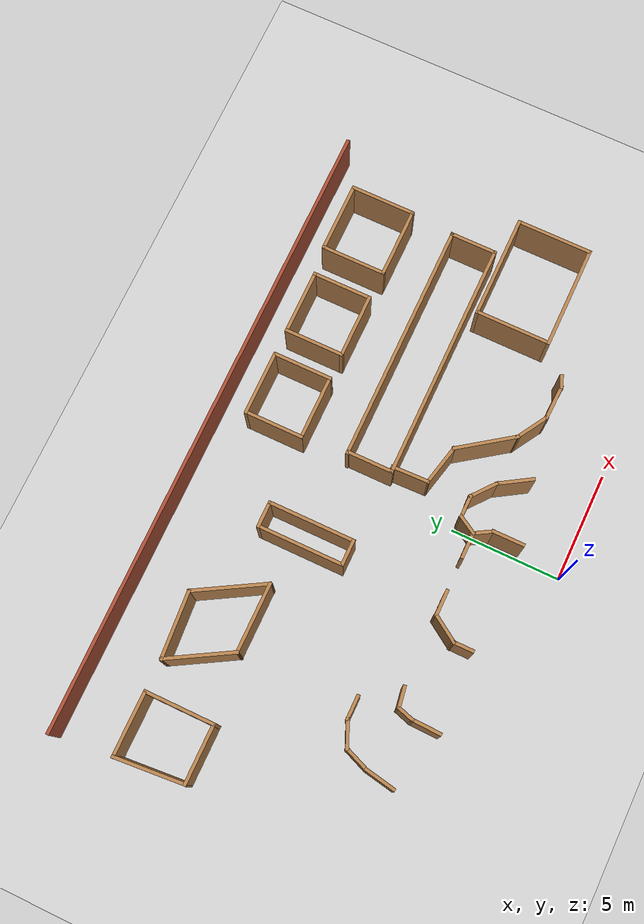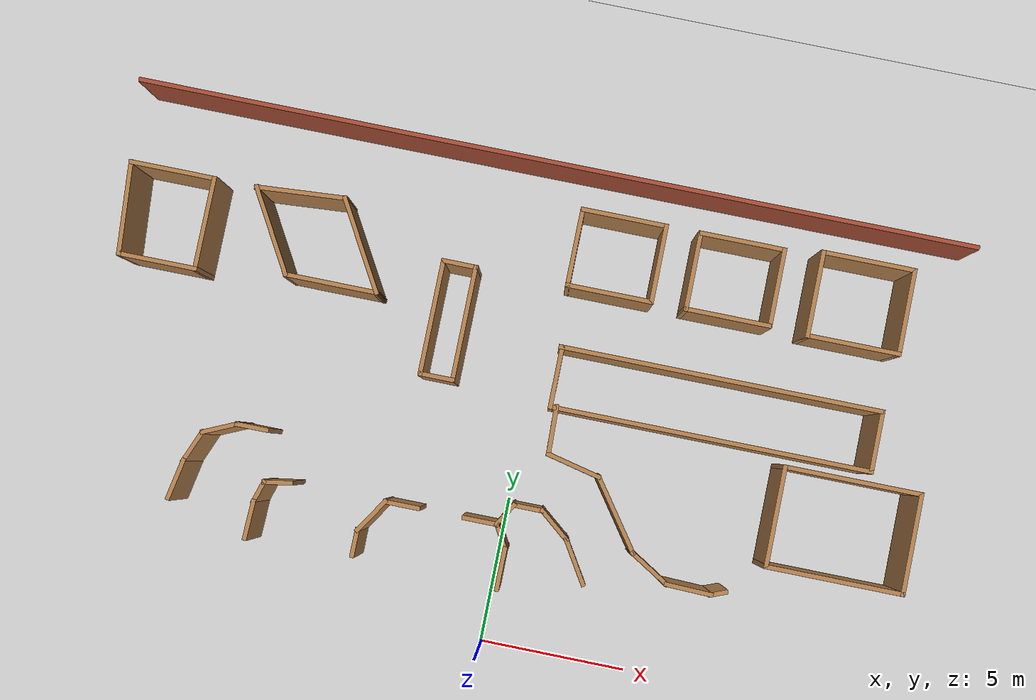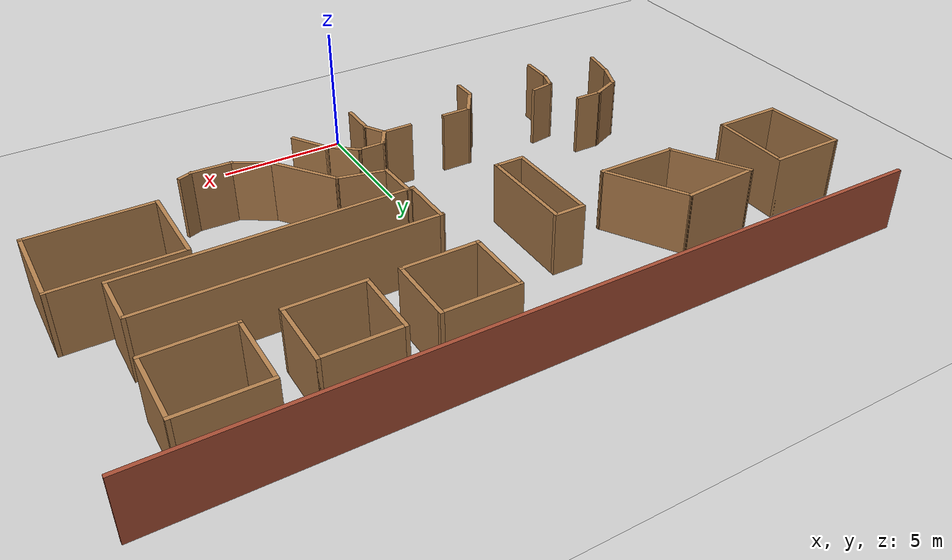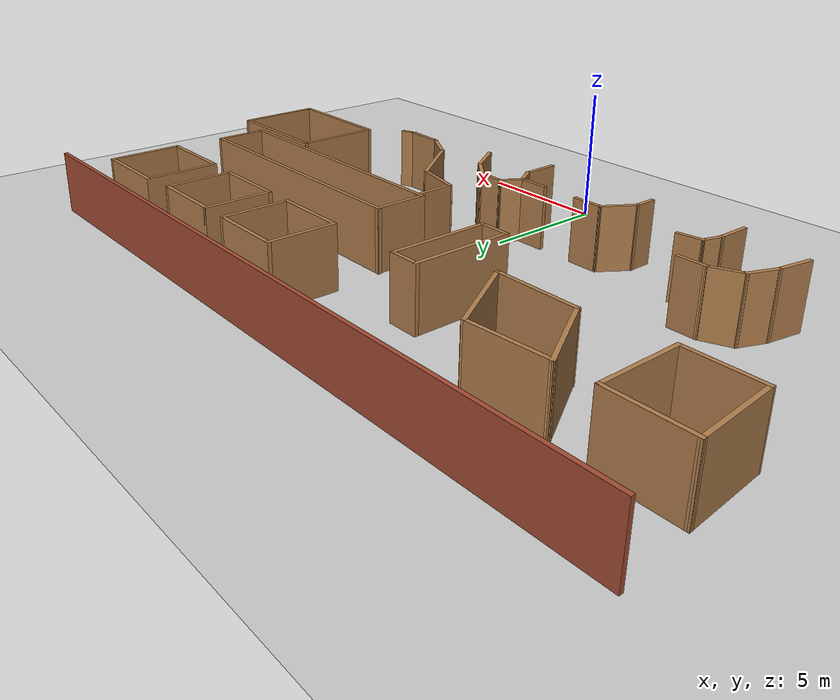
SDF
<sdf version="1.6">
 <world name="default">
  <model name="ground_plane">
   <static>1</static>
   <link name="link">
    <collision name="collision">
     <geometry><plane><normal>0 0 1</normal><size>100 100</size></plane></geometry>
     <surface><friction><ode><mu>100</mu><mu2>50</mu2></ode></friction></surface>
    </collision>
    <visual name="visual">
     <cast_shadows>0</cast_shadows>
     <geometry><plane><normal>0 0 1</normal><size>100 100</size></plane></geometry>
     <material>
      <ambient>1.0 1.0 1.0 1.0</ambient>
      <diffuse>0.8 0.8 0.8 1.0</diffuse>
      <specular>0.01 0.01 0.01 1.000000</specular>
     </material>
    </visual>
   </link>
  </model>
  <model name="Untitled">
   <pose>-0.599498 1.70429 0 0 -0 0</pose>
   <link name="Wall_101">
    <collision name="Wall_101_Collision">
     <geometry><box><size>3 0.15 2.5</size></box></geometry>
     <pose>0 0 1.25 0 -0 0</pose>
    </collision>
    <visual name="Wall_101_Visual">
     <pose>0 0 1.25 0 -0 0</pose>
     <geometry><box><size>3 0.15 2.5</size></box></geometry>
     <material>
      <script><uri>file://media/materials/scripts/gazebo.material</uri><name>Gazebo/Wood</name></script>
      <ambient>1 1 1 1</ambient>
     </material>
     <meta><layer>0</layer></meta>
    </visual>
    <pose>2.53338 13.315 0 0 -0 3.14159</pose>
   </link>
   <link name="Wall_102">
    <collision name="Wall_102_Collision">
     <geometry><box><size>2.75 0.15 2.5</size></box></geometry>
     <pose>0 0 1.25 0 -0 0</pose>
    </collision>
    <visual name="Wall_102_Visual">
     <pose>0 0 1.25 0 -0 0</pose>
     <geometry><box><size>2.75 0.15 2.5</size></box></geometry>
     <material>
      <script><uri>file://media/materials/scripts/gazebo.material</uri><name>Gazebo/Wood</name></script>
      <ambient>1 1 1 1</ambient>
     </material>
     <meta><layer>0</layer></meta>
    </visual>
    <pose>1.10838 12.015 0 0 0 -1.5708</pose>
   </link>
   <link name="Wall_103">
    <collision name="Wall_103_Collision">
     <geometry><box><size>3 0.15 2.5</size></box></geometry>
     <pose>0 0 1.25 0 -0 0</pose>
    </collision>
    <visual name="Wall_103_Visual">
     <pose>0 0 1.25 0 -0 0</pose>
     <geometry><box><size>3 0.15 2.5</size></box></geometry>
     <material>
      <script><uri>file://media/materials/scripts/gazebo.material</uri><name>Gazebo/Wood</name></script>
      <ambient>1 1 1 1</ambient>
     </material>
     <meta><layer>0</layer></meta>
    </visual>
    <pose>2.53338 10.715 0 0 -0 0</pose>
   </link>
   <link name="Wall_104">
    <collision name="Wall_104_Collision">
     <geometry><box><size>2.75 0.15 2.5</size></box></geometry>
     <pose>0 0 1.25 0 -0 0</pose>
    </collision>
    <visual name="Wall_104_Visual">
     <pose>0 0 1.25 0 -0 0</pose>
     <geometry><box><size>2.75 0.15 2.5</size></box></geometry>
     <material>
      <script><uri>file://media/materials/scripts/gazebo.material</uri><name>Gazebo/Wood</name></script>
      <ambient>1 1 1 1</ambient>
     </material>
     <meta><layer>0</layer></meta>
    </visual>
    <pose>3.95838 12.015 0 0 -0 1.5708</pose>
   </link>
   <link name="Wall_106">
    <collision name="Wall_106_Collision">
     <geometry><box><size>2.17719 0.15 2.5</size></box></geometry>
     <pose>0 0 1.25 0 -0 0</pose>
    </collision>
    <visual name="Wall_106_Visual">
     <pose>0 0 1.25 0 -0 0</pose>
     <geometry><box><size>2.17719 0.15 2.5</size></box></geometry>
     <material>
      <script><uri>file://media/materials/scripts/gazebo.material</uri><name>Gazebo/Wood</name></script>
      <ambient>1 1 1 1</ambient>
     </material>
     <meta><layer>0</layer></meta>
    </visual>
    <pose>1.35118 7.63612 0 0 0 -1.5708</pose>
   </link>
   <link name="Wall_107">
    <collision name="Wall_107_Collision">
     <geometry><box><size>11 0.15 2.5</size></box></geometry>
     <pose>0 0 1.25 0 -0 0</pose>
    </collision>
    <visual name="Wall_107_Visual">
     <pose>0 0 1.25 0 -0 0</pose>
     <geometry><box><size>11 0.15 2.5</size></box></geometry>
     <material>
      <script><uri>file://media/materials/scripts/gazebo.material</uri><name>Gazebo/Wood</name></script>
      <ambient>1 1 1 1</ambient>
     </material>
     <meta><layer>0</layer></meta>
    </visual>
    <pose>6.77618 6.62279 0 0 -0 0</pose>
   </link>
   <link name="Wall_108">
    <collision name="Wall_108_Collision">
     <geometry><box><size>2.17719 0.15 2.5</size></box></geometry>
     <pose>0 0 1.25 0 -0 0</pose>
    </collision>
    <visual name="Wall_108_Visual">
     <pose>0 0 1.25 0 -0 0</pose>
     <geometry><box><size>2.17719 0.15 2.5</size></box></geometry>
     <material>
      <script><uri>file://media/materials/scripts/gazebo.material</uri><name>Gazebo/Wood</name></script>
      <ambient>1 1 1 1</ambient>
     </material>
     <meta><layer>0</layer></meta>
    </visual>
    <pose>12.2012 7.63612 0 0 -0 1.5708</pose>
   </link>
   <link name="Wall_109">
    <collision name="Wall_109_Collision">
     <geometry><box><size>11 0.15 2.5</size></box></geometry>
     <pose>0 0 1.25 0 -0 0</pose>
    </collision>
    <visual name="Wall_109_Visual">
     <pose>0 0 1.25 0 -0 0</pose>
     <geometry><box><size>11 0.15 2.5</size></box></geometry>
     <material>
      <script><uri>file://media/materials/scripts/gazebo.material</uri><name>Gazebo/Wood</name></script>
      <ambient>1 1 1 1</ambient>
     </material>
     <meta><layer>0</layer></meta>
    </visual>
    <pose>6.73044 8.64946 0 0 -0 3.14159</pose>
   </link>
   <link name="Wall_111">
    <collision name="Wall_111_Collision">
     <geometry><box><size>3 0.15 2.5</size></box></geometry>
     <pose>0 0 1.25 0 -0 0</pose>
    </collision>
    <visual name="Wall_111_Visual">
     <pose>0 0 1.25 0 -0 0</pose>
     <geometry><box><size>3 0.15 2.5</size></box></geometry>
     <material>
      <script><uri>file://media/materials/scripts/gazebo.material</uri><name>Gazebo/Wood</name></script>
      <ambient>1 1 1 1</ambient>
     </material>
     <meta><layer>0</layer></meta>
    </visual>
    <pose>-12.6189 11.8842 0 0 -0 0</pose>
   </link>
   <link name="Wall_112">
    <collision name="Wall_112_Collision">
     <geometry><box><size>3.25 0.15 2.5</size></box></geometry>
     <pose>0 0 1.25 0 -0 0</pose>
    </collision>
    <visual name="Wall_112_Visual">
     <pose>0 0 1.25 0 -0 0</pose>
     <geometry><box><size>3.25 0.15 2.5</size></box></geometry>
     <material>
      <script><uri>file://media/materials/scripts/gazebo.material</uri><name>Gazebo/Wood</name></script>
      <ambient>1 1 1 1</ambient>
     </material>
     <meta><layer>0</layer></meta>
    </visual>
    <pose>-11.1939 10.3342 0 0 0 -1.5708</pose>
   </link>
   <link name="Wall_113">
    <collision name="Wall_113_Collision">
     <geometry><box><size>2.75 0.15 2.5</size></box></geometry>
     <pose>0 0 1.25 0 -0 0</pose>
    </collision>
    <visual name="Wall_113_Visual">
     <pose>0 0 1.25 0 -0 0</pose>
     <geometry><box><size>2.75 0.15 2.5</size></box></geometry>
     <material>
      <script><uri>file://media/materials/scripts/gazebo.material</uri><name>Gazebo/Wood</name></script>
      <ambient>1 1 1 1</ambient>
     </material>
     <meta><layer>0</layer></meta>
    </visual>
    <pose>-12.4939 8.78422 0 0 -0 3.14159</pose>
   </link>
   <link name="Wall_114">
    <collision name="Wall_114_Collision">
     <geometry><box><size>3.26006 0.15 2.5</size></box></geometry>
     <pose>0 0 1.25 0 -0 0</pose>
    </collision>
    <visual name="Wall_114_Visual">
     <pose>0 0 1.25 0 -0 0</pose>
     <geometry><box><size>3.26006 0.15 2.5</size></box></geometry>
     <material>
      <script><uri>file://media/materials/scripts/gazebo.material</uri><name>Gazebo/Wood</name></script>
      <ambient>1 1 1 1</ambient>
     </material>
     <meta><layer>0</layer></meta>
    </visual>
    <pose>-13.9189 10.3342 0 0 -0 1.65127</pose>
   </link>
   <link name="Wall_116">
    <collision name="Wall_116_Collision">
     <geometry><box><size>3.25 0.15 2.5</size></box></geometry>
     <pose>0 0 1.25 0 -0 0</pose>
    </collision>
    <visual name="Wall_116_Visual">
     <pose>0 0 1.25 0 -0 0</pose>
     <geometry><box><size>3.25 0.15 2.5</size></box></geometry>
     <material>
      <script><uri>file://media/materials/scripts/gazebo.material</uri><name>Gazebo/Wood</name></script>
      <ambient>1 1 1 1</ambient>
     </material>
     <meta><layer>0</layer></meta>
    </visual>
    <pose>-8.96931 10.5419 0 0 0 -1.0472</pose>
   </link>
   <link name="Wall_117">
    <collision name="Wall_117_Collision">
     <geometry><box><size>3.25 0.15 2.5</size></box></geometry>
     <pose>0 0 1.25 0 -0 0</pose>
    </collision>
    <visual name="Wall_117_Visual">
     <pose>0 0 1.25 0 -0 0</pose>
     <geometry><box><size>3.25 0.15 2.5</size></box></geometry>
     <material>
      <script><uri>file://media/materials/scripts/gazebo.material</uri><name>Gazebo/Wood</name></script>
      <ambient>1 1 1 1</ambient>
     </material>
     <meta><layer>0</layer></meta>
    </visual>
    <pose>-6.64431 9.19954 0 0 -0 0</pose>
   </link>
   <link name="Wall_118">
    <collision name="Wall_118_Collision">
     <geometry><box><size>3.5 0.15 2.5</size></box></geometry>
     <pose>0 0 1.25 0 -0 0</pose>
    </collision>
    <visual name="Wall_118_Visual">
     <pose>0 0 1.25 0 -0 0</pose>
     <geometry><box><size>3.5 0.15 2.5</size></box></geometry>
     <material>
      <script><uri>file://media/materials/scripts/gazebo.material</uri><name>Gazebo/Wood</name></script>
      <ambient>1 1 1 1</ambient>
     </material>
     <meta><layer>0</layer></meta>
    </visual>
    <pose>-5.93181 10.6501 0 0 -0 2.0944</pose>
   </link>
   <link name="Wall_119">
    <collision name="Wall_119_Collision">
     <geometry><box><size>3.13287 0.15 2.5</size></box></geometry>
     <pose>0 0 1.25 0 -0 0</pose>
    </collision>
    <visual name="Wall_119_Visual">
     <pose>0 0 1.25 0 -0 0</pose>
     <geometry><box><size>3.13287 0.15 2.5</size></box></geometry>
     <material>
      <script><uri>file://media/materials/scripts/gazebo.material</uri><name>Gazebo/Wood</name></script>
      <ambient>1 1 1 1</ambient>
     </material>
     <meta><layer>0</layer></meta>
    </visual>
    <pose>-8.25681 11.9925 0 0 0 -3.06894</pose>
   </link>
   <link name="Wall_121">
    <collision name="Wall_121_Collision">
     <geometry><box><size>1.00408 0.15 2.5</size></box></geometry>
     <pose>0 0 1.25 0 -0 0</pose>
    </collision>
    <visual name="Wall_121_Visual">
     <pose>0 0 1.25 0 -0 0</pose>
     <geometry><box><size>1.00408 0.15 2.5</size></box></geometry>
     <material>
      <script><uri>file://media/materials/scripts/gazebo.material</uri><name>Gazebo/Wood</name></script>
      <ambient>1 1 1 1</ambient>
     </material>
     <meta><layer>0</layer></meta>
    </visual>
    <pose>0.604472 2.8259 0 0 -0 1.03717</pose>
   </link>
   <link name="Wall_122">
    <collision name="Wall_122_Collision">
     <geometry><box><size>1.11054 0.15 2.5</size></box></geometry>
     <pose>0 0 1.25 0 -0 0</pose>
    </collision>
    <visual name="Wall_122_Visual">
     <pose>0 0 1.25 0 -0 0</pose>
     <geometry><box><size>1.11054 0.15 2.5</size></box></geometry>
     <material>
      <script><uri>file://media/materials/scripts/gazebo.material</uri><name>Gazebo/Wood</name></script>
      <ambient>1 1 1 1</ambient>
     </material>
     <meta><layer>0</layer></meta>
    </visual>
    <pose>1.30196 3.19357 0 0 -0 0</pose>
   </link>
   <link name="Wall_123">
    <collision name="Wall_123_Collision">
     <geometry><box><size>1.38583 0.15 2.5</size></box></geometry>
     <pose>0 0 1.25 0 -0 0</pose>
    </collision>
    <visual name="Wall_123_Visual">
     <pose>0 0 1.25 0 -0 0</pose>
     <geometry><box><size>1.38583 0.15 2.5</size></box></geometry>
     <material>
      <script><uri>file://media/materials/scripts/gazebo.material</uri><name>Gazebo/Wood</name></script>
      <ambient>1 1 1 1</ambient>
     </material>
     <meta><layer>0</layer></meta>
    </visual>
    <pose>2.26251 2.80478 0 0 0 -0.680521</pose>
   </link>
   <link name="Wall_124">
    <collision name="Wall_124_Collision">
     <geometry><box><size>1.71121 0.15 2.5</size></box></geometry>
     <pose>0 0 1.25 0 -0 0</pose>
    </collision>
    <visual name="Wall_124_Visual">
     <pose>0 0 1.25 0 -0 0</pose>
     <geometry><box><size>1.71121 0.15 2.5</size></box></geometry>
     <material>
      <script><uri>file://media/materials/scripts/gazebo.material</uri><name>Gazebo/Wood</name></script>
      <ambient>1 1 1 1</ambient>
     </material>
     <meta><layer>0</layer></meta>
    </visual>
    <pose>3.15444 1.75275 0 0 0 -1.0153</pose>
   </link>
   <link name="Wall_128">
    <collision name="Wall_128_Collision">
     <geometry><box><size>1.75156 0.15 2.5</size></box></geometry>
     <pose>0 0 1.25 0 -0 0</pose>
    </collision>
    <visual name="Wall_128_Visual">
     <pose>0 0 1.25 0 -0 0</pose>
     <geometry><box><size>1.75156 0.15 2.5</size></box></geometry>
     <material>
      <script><uri>file://media/materials/scripts/gazebo.material</uri><name>Gazebo/Wood</name></script>
      <ambient>1 1 1 1</ambient>
     </material>
     <meta><layer>0</layer></meta>
    </visual>
    <pose>1.5764 5.86938 0 0 0 -1.54223</pose>
   </link>
   <link name="Wall_129">
    <collision name="Wall_129_Collision">
     <geometry><box><size>1.98075 0.15 2.5</size></box></geometry>
     <pose>0 0 1.25 0 -0 0</pose>
    </collision>
    <visual name="Wall_129_Visual">
     <pose>0 0 1.25 0 -0 0</pose>
     <geometry><box><size>1.98075 0.15 2.5</size></box></geometry>
     <material>
      <script><uri>file://media/materials/scripts/gazebo.material</uri><name>Gazebo/Wood</name></script>
      <ambient>1 1 1 1</ambient>
     </material>
     <meta><layer>0</layer></meta>
    </visual>
    <pose>2.49121 4.86309 0 0 0 -0.226799</pose>
   </link>
   <link name="Wall_13">
    <collision name="Wall_13_Collision">
     <geometry><box><size>1 0.15 2.5</size></box></geometry>
     <pose>0 0 1.25 0 -0 0</pose>
    </collision>
    <visual name="Wall_13_Visual">
     <pose>0 0 1.25 0 -0 0</pose>
     <geometry><box><size>1 0.15 2.5</size></box></geometry>
     <material>
      <script><uri>file://media/materials/scripts/gazebo.material</uri><name>Gazebo/Wood</name></script>
      <ambient>1 1 1 1</ambient>
     </material>
     <meta><layer>0</layer></meta>
    </visual>
    <pose>-4.09355 0.934302 0 0 -0 1.5708</pose>
   </link>
   <link name="Wall_130">
    <collision name="Wall_130_Collision">
     <geometry><box><size>2.90431 0.15 2.5</size></box></geometry>
     <pose>0 0 1.25 0 -0 0</pose>
    </collision>
    <visual name="Wall_130_Visual">
     <pose>0 0 1.25 0 -0 0</pose>
     <geometry><box><size>2.90431 0.15 2.5</size></box></geometry>
     <material>
      <script><uri>file://media/materials/scripts/gazebo.material</uri><name>Gazebo/Wood</name></script>
      <ambient>1 1 1 1</ambient>
     </material>
     <meta><layer>0</layer></meta>
    </visual>
    <pose>4.1836 3.53662 0 0 0 -0.950547</pose>
   </link>
   <link name="Wall_131">
    <collision name="Wall_131_Collision">
     <geometry><box><size>1.6483 0.15 2.5</size></box></geometry>
     <pose>0 0 1.25 0 -0 0</pose>
    </collision>
    <visual name="Wall_131_Visual">
     <pose>0 0 1.25 0 -0 0</pose>
     <geometry><box><size>1.6483 0.15 2.5</size></box></geometry>
     <material>
      <script><uri>file://media/materials/scripts/gazebo.material</uri><name>Gazebo/Wood</name></script>
      <ambient>1 1 1 1</ambient>
     </material>
     <meta><layer>0</layer></meta>
    </visual>
    <pose>5.62442 2.0272 0 0 0 -0.545655</pose>
   </link>
   <link name="Wall_132">
    <collision name="Wall_132_Collision">
     <geometry><box><size>1.66012 0.15 2.5</size></box></geometry>
     <pose>0 0 1.25 0 -0 0</pose>
    </collision>
    <visual name="Wall_132_Visual">
     <pose>0 0 1.25 0 -0 0</pose>
     <geometry><box><size>1.66012 0.15 2.5</size></box></geometry>
     <material>
      <script><uri>file://media/materials/scripts/gazebo.material</uri><name>Gazebo/Wood</name></script>
      <ambient>1 1 1 1</ambient>
     </material>
     <meta><layer>0</layer></meta>
    </visual>
    <pose>7.0195 1.61553 0 0 0 -0.030294</pose>
   </link>
   <link name="Wall_133">
    <collision name="Wall_133_Collision">
     <geometry><box><size>0.642638 0.15 2.5</size></box></geometry>
     <pose>0 0 1.25 0 -0 0</pose>
    </collision>
    <visual name="Wall_133_Visual">
     <pose>0 0 1.25 0 -0 0</pose>
     <geometry><box><size>0.642638 0.15 2.5</size></box></geometry>
     <material>
      <script><uri>file://media/materials/scripts/gazebo.material</uri><name>Gazebo/Wood</name></script>
      <ambient>1 1 1 1</ambient>
     </material>
     <meta><layer>0</layer></meta>
    </visual>
    <pose>8.00291 1.68414 0 0 -0 0.380506</pose>
   </link>
   <link name="Wall_135">
    <collision name="Wall_135_Collision">
     <geometry><box><size>3.5 0.15 2.5</size></box></geometry>
     <pose>0 0 1.25 0 -0 0</pose>
    </collision>
    <visual name="Wall_135_Visual">
     <pose>0 0 1.25 0 -0 0</pose>
     <geometry><box><size>3.5 0.15 2.5</size></box></geometry>
     <material>
      <script><uri>file://media/materials/scripts/gazebo.material</uri><name>Gazebo/Wood</name></script>
      <ambient>1 1 1 1</ambient>
     </material>
     <meta><layer>0</layer></meta>
    </visual>
    <pose>9.37512 4.53743 0 0 0 -1.5708</pose>
   </link>
   <link name="Wall_136">
    <collision name="Wall_136_Collision">
     <geometry><box><size>4.75 0.15 2.5</size></box></geometry>
     <pose>0 0 1.25 0 -0 0</pose>
    </collision>
    <visual name="Wall_136_Visual">
     <pose>0 0 1.25 0 -0 0</pose>
     <geometry><box><size>4.75 0.15 2.5</size></box></geometry>
     <material>
      <script><uri>file://media/materials/scripts/gazebo.material</uri><name>Gazebo/Wood</name></script>
      <ambient>1 1 1 1</ambient>
     </material>
     <meta><layer>0</layer></meta>
    </visual>
    <pose>11.6751 2.86243 0 0 -0 0</pose>
   </link>
   <link name="Wall_137">
    <collision name="Wall_137_Collision">
     <geometry><box><size>3.5 0.15 2.5</size></box></geometry>
     <pose>0 0 1.25 0 -0 0</pose>
    </collision>
    <visual name="Wall_137_Visual">
     <pose>0 0 1.25 0 -0 0</pose>
     <geometry><box><size>3.5 0.15 2.5</size></box></geometry>
     <material>
      <script><uri>file://media/materials/scripts/gazebo.material</uri><name>Gazebo/Wood</name></script>
      <ambient>1 1 1 1</ambient>
     </material>
     <meta><layer>0</layer></meta>
    </visual>
    <pose>13.9751 4.53743 0 0 -0 1.5708</pose>
   </link>
   <link name="Wall_138">
    <collision name="Wall_138_Collision">
     <geometry><box><size>4.75 0.15 2.5</size></box></geometry>
     <pose>0 0 1.25 0 -0 0</pose>
    </collision>
    <visual name="Wall_138_Visual">
     <pose>0 0 1.25 0 -0 0</pose>
     <geometry><box><size>4.75 0.15 2.5</size></box></geometry>
     <material>
      <script><uri>file://media/materials/scripts/gazebo.material</uri><name>Gazebo/Wood</name></script>
      <ambient>1 1 1 1</ambient>
     </material>
     <meta><layer>0</layer></meta>
    </visual>
    <pose>11.6751 6.21243 0 0 -0 3.14159</pose>
   </link>
   <link name="Wall_14">
    <collision name="Wall_14_Collision">
     <geometry><box><size>1.46157 0.15 2.5</size></box></geometry>
     <pose>0 0 1.25 0 -0 0</pose>
    </collision>
    <visual name="Wall_14_Visual">
     <pose>0 0 1.25 0 -0 0</pose>
     <geometry><box><size>1.46157 0.15 2.5</size></box></geometry>
     <material>
      <script><uri>file://media/materials/scripts/gazebo.material</uri><name>Gazebo/Wood</name></script>
      <ambient>1 1 1 1</ambient>
     </material>
     <meta><layer>0</layer></meta>
    </visual>
    <pose>-3.73558 1.90877 0 0 -0 0.99338</pose>
   </link>
   <link name="Wall_145">
    <collision name="Wall_145_Collision">
     <geometry><box><size>4 0.15 2.5</size></box></geometry>
     <pose>0 0 1.25 0 -0 0</pose>
    </collision>
    <visual name="Wall_145_Visual">
     <pose>0 0 1.25 0 -0 0</pose>
     <geometry><box><size>4 0.15 2.5</size></box></geometry>
     <material>
      <script><uri>file://media/materials/scripts/gazebo.material</uri><name>Gazebo/Wood</name></script>
      <ambient>1 1 1 1</ambient>
     </material>
     <meta><layer>0</layer></meta>
    </visual>
    <pose>-3.11197 8.76998 0 0 0 -1.5708</pose>
   </link>
   <link name="Wall_146">
    <collision name="Wall_146_Collision">
     <geometry><box><size>1.25 0.15 2.5</size></box></geometry>
     <pose>0 0 1.25 0 -0 0</pose>
    </collision>
    <visual name="Wall_146_Visual">
     <pose>0 0 1.25 0 -0 0</pose>
     <geometry><box><size>1.25 0.15 2.5</size></box></geometry>
     <material>
      <script><uri>file://media/materials/scripts/gazebo.material</uri><name>Gazebo/Wood</name></script>
      <ambient>1 1 1 1</ambient>
     </material>
     <meta><layer>0</layer></meta>
    </visual>
    <pose>-2.56197 6.84497 0 0 -0 0</pose>
   </link>
   <link name="Wall_147">
    <collision name="Wall_147_Collision">
     <geometry><box><size>4 0.15 2.5</size></box></geometry>
     <pose>0 0 1.25 0 -0 0</pose>
    </collision>
    <visual name="Wall_147_Visual">
     <pose>0 0 1.25 0 -0 0</pose>
     <geometry><box><size>4 0.15 2.5</size></box></geometry>
     <material>
      <script><uri>file://media/materials/scripts/gazebo.material</uri><name>Gazebo/Wood</name></script>
      <ambient>1 1 1 1</ambient>
     </material>
     <meta><layer>0</layer></meta>
    </visual>
    <pose>-2.01197 8.76998 0 0 -0 1.5708</pose>
   </link>
   <link name="Wall_148">
    <collision name="Wall_148_Collision">
     <geometry><box><size>1.25 0.15 2.5</size></box></geometry>
     <pose>0 0 1.25 0 -0 0</pose>
    </collision>
    <visual name="Wall_148_Visual">
     <pose>0 0 1.25 0 -0 0</pose>
     <geometry><box><size>1.25 0.15 2.5</size></box></geometry>
     <material>
      <script><uri>file://media/materials/scripts/gazebo.material</uri><name>Gazebo/Wood</name></script>
      <ambient>1 1 1 1</ambient>
     </material>
     <meta><layer>0</layer></meta>
    </visual>
    <pose>-2.56197 10.695 0 0 -0 3.14159</pose>
   </link>
   <link name="Wall_15">
    <collision name="Wall_15_Collision">
     <geometry><box><size>1.25 0.15 2.5</size></box></geometry>
     <pose>0 0 1.25 0 -0 0</pose>
    </collision>
    <visual name="Wall_15_Visual">
     <pose>0 0 1.25 0 -0 0</pose>
     <geometry><box><size>1.25 0.15 2.5</size></box></geometry>
     <material>
      <script><uri>file://media/materials/scripts/gazebo.material</uri><name>Gazebo/Wood</name></script>
      <ambient>1 1 1 1</ambient>
     </material>
     <meta><layer>0</layer></meta>
    </visual>
    <pose>-2.82761 2.45824 0 0 -0 0</pose>
   </link>
   <link name="Wall_17">
    <collision name="Wall_17_Collision">
     <geometry><box><size>1.25 0.15 2.5</size></box></geometry>
     <pose>0 0 1.25 0 -0 0</pose>
    </collision>
    <visual name="Wall_17_Visual">
     <pose>0 0 1.25 0 -0 0</pose>
     <geometry><box><size>1.25 0.15 2.5</size></box></geometry>
     <material>
      <script><uri>file://media/materials/scripts/gazebo.material</uri><name>Gazebo/Wood</name></script>
      <ambient>1 1 1 1</ambient>
     </material>
     <meta><layer>0</layer></meta>
    </visual>
    <pose>-0.162746 2.45824 0 0 -0 0</pose>
   </link>
   <link name="Wall_18">
    <collision name="Wall_18_Collision">
     <geometry><box><size>1 0.15 2.5</size></box></geometry>
     <pose>0 0 1.25 0 -0 0</pose>
    </collision>
    <visual name="Wall_18_Visual">
     <pose>0 0 1.25 0 -0 0</pose>
     <geometry><box><size>1 0.15 2.5</size></box></geometry>
     <material>
      <script><uri>file://media/materials/scripts/gazebo.material</uri><name>Gazebo/Wood</name></script>
      <ambient>1 1 1 1</ambient>
     </material>
     <meta><layer>0</layer></meta>
    </visual>
    <pose>0.599754 2.09017 0 0 0 -1.0472</pose>
   </link>
   <link name="Wall_19">
    <collision name="Wall_19_Collision">
     <geometry><box><size>1.5 0.15 2.5</size></box></geometry>
     <pose>0 0 1.25 0 -0 0</pose>
    </collision>
    <visual name="Wall_19_Visual">
     <pose>0 0 1.25 0 -0 0</pose>
     <geometry><box><size>1.5 0.15 2.5</size></box></geometry>
     <material>
      <script><uri>file://media/materials/scripts/gazebo.material</uri><name>Gazebo/Wood</name></script>
      <ambient>1 1 1 1</ambient>
     </material>
     <meta><layer>0</layer></meta>
    </visual>
    <pose>0.812254 1.04711 0 0 0 -1.5708</pose>
   </link>
   <link name="Wall_52">
    <collision name="Wall_52_Collision">
     <geometry><box><size>1.48639 0.15 2.5</size></box></geometry>
     <pose>0 0 1.25 0 -0 0</pose>
    </collision>
    <visual name="Wall_52_Visual">
     <pose>0 0 1.25 0 -0 0</pose>
     <geometry><box><size>1.48639 0.15 2.5</size></box></geometry>
     <material>
      <script><uri>file://media/materials/scripts/gazebo.material</uri><name>Gazebo/Wood</name></script>
      <ambient>1 1 1 1</ambient>
     </material>
     <meta><layer>0</layer></meta>
    </visual>
    <pose>-10.3332 1.81294 0 0 -0 1.38863</pose>
   </link>
   <link name="Wall_53">
    <collision name="Wall_53_Collision">
     <geometry><box><size>1.26751 0.15 2.5</size></box></geometry>
     <pose>0 0 1.25 0 -0 0</pose>
    </collision>
    <visual name="Wall_53_Visual">
     <pose>0 0 1.25 0 -0 0</pose>
     <geometry><box><size>1.26751 0.15 2.5</size></box></geometry>
     <material>
      <script><uri>file://media/materials/scripts/gazebo.material</uri><name>Gazebo/Wood</name></script>
      <ambient>1 1 1 1</ambient>
     </material>
     <meta><layer>0</layer></meta>
    </visual>
    <pose>-10.0046 2.98887 0 0 -0 1.19029</pose>
   </link>
   <link name="Wall_54">
    <collision name="Wall_54_Collision">
     <geometry><box><size>1.32644 0.15 2.5</size></box></geometry>
     <pose>0 0 1.25 0 -0 0</pose>
    </collision>
    <visual name="Wall_54_Visual">
     <pose>0 0 1.25 0 -0 0</pose>
     <geometry><box><size>1.32644 0.15 2.5</size></box></geometry>
     <material>
      <script><uri>file://media/materials/scripts/gazebo.material</uri><name>Gazebo/Wood</name></script>
      <ambient>1 1 1 1</ambient>
     </material>
     <meta><layer>0</layer></meta>
    </visual>
    <pose>-9.26098 3.74977 0 0 -0 0.424194</pose>
   </link>
   <link name="Wall_55">
    <collision name="Wall_55_Collision">
     <geometry><box><size>1.153 0.15 2.5</size></box></geometry>
     <pose>0 0 1.25 0 -0 0</pose>
    </collision>
    <visual name="Wall_55_Visual">
     <pose>0 0 1.25 0 -0 0</pose>
     <geometry><box><size>1.153 0.15 2.5</size></box></geometry>
     <material>
      <script><uri>file://media/materials/scripts/gazebo.material</uri><name>Gazebo/Wood</name></script>
      <ambient>1 1 1 1</ambient>
     </material>
     <meta><layer>0</layer></meta>
    </visual>
    <pose>-8.2234 3.99187 0 0 -0 0</pose>
   </link>
   <link name="Wall_57">
    <collision name="Wall_57_Collision">
     <geometry><box><size>1.39558 0.15 2.5</size></box></geometry>
     <pose>0 0 1.25 0 -0 0</pose>
    </collision>
    <visual name="Wall_57_Visual">
     <pose>0 0 1.25 0 -0 0</pose>
     <geometry><box><size>1.39558 0.15 2.5</size></box></geometry>
     <material>
      <script><uri>file://media/materials/scripts/gazebo.material</uri><name>Gazebo/Wood</name></script>
      <ambient>1 1 1 1</ambient>
     </material>
     <meta><layer>0</layer></meta>
    </visual>
    <pose>-7.67002 0.982872 0 0 -0 1.54303</pose>
   </link>
   <link name="Wall_58">
    <collision name="Wall_58_Collision">
     <geometry><box><size>0.872181 0.15 2.5</size></box></geometry>
     <pose>0 0 1.25 0 -0 0</pose>
    </collision>
    <visual name="Wall_58_Visual">
     <pose>0 0 1.25 0 -0 0</pose>
     <geometry><box><size>0.872181 0.15 2.5</size></box></geometry>
     <material>
      <script><uri>file://media/materials/scripts/gazebo.material</uri><name>Gazebo/Wood</name></script>
      <ambient>1 1 1 1</ambient>
     </material>
     <meta><layer>0</layer></meta>
    </visual>
    <pose>-7.54896 1.95128 0 0 -0 1.27934</pose>
   </link>
   <link name="Wall_59">
    <collision name="Wall_59_Collision">
     <geometry><box><size>1.02565 0.15 2.5</size></box></geometry>
     <pose>0 0 1.25 0 -0 0</pose>
    </collision>
    <visual name="Wall_59_Visual">
     <pose>0 0 1.25 0 -0 0</pose>
     <geometry><box><size>1.02565 0.15 2.5</size></box></geometry>
     <material>
      <script><uri>file://media/materials/scripts/gazebo.material</uri><name>Gazebo/Wood</name></script>
      <ambient>1 1 1 1</ambient>
     </material>
     <meta><layer>0</layer></meta>
    </visual>
    <pose>-7.01288 2.36632 0 0 -0 0.158655</pose>
   </link>
   <link name="Wall_9">
    <collision name="Wall_9_Collision">
     <geometry><box><size>28.75 0.15 2.5</size></box></geometry>
     <pose>0 0 1.25 0 -0 0</pose>
    </collision>
    <visual name="Wall_9_Visual">
     <pose>0 0 1.25 0 -0 0</pose>
     <geometry><box><size>28.75 0.15 2.5</size></box></geometry>
     <material>
      <script><uri>file://media/materials/scripts/gazebo.material</uri><name>Gazebo/Bricks</name></script>
      <ambient>1 1 1 1</ambient>
     </material>
     <meta><layer>0</layer></meta>
    </visual>
    <pose>-0.016371 14.6752 0 0 -0 0</pose>
   </link>
   <link name="Wall_91">
    <collision name="Wall_91_Collision">
     <geometry><box><size>3.25 0.15 2.5</size></box></geometry>
     <pose>0 0 1.25 0 -0 0</pose>
    </collision>
    <visual name="Wall_91_Visual">
     <pose>0 0 1.25 0 -0 0</pose>
     <geometry><box><size>3.25 0.15 2.5</size></box></geometry>
     <material>
      <script><uri>file://media/materials/scripts/gazebo.material</uri><name>Gazebo/Wood</name></script>
      <ambient>1 1 1 1</ambient>
     </material>
     <meta><layer>0</layer></meta>
    </visual>
    <pose>10.8246 13.4979 0 0 -0 3.14159</pose>
   </link>
   <link name="Wall_92">
    <collision name="Wall_92_Collision">
     <geometry><box><size>3 0.15 2.5</size></box></geometry>
     <pose>0 0 1.25 0 -0 0</pose>
    </collision>
    <visual name="Wall_92_Visual">
     <pose>0 0 1.25 0 -0 0</pose>
     <geometry><box><size>3 0.15 2.5</size></box></geometry>
     <material>
      <script><uri>file://media/materials/scripts/gazebo.material</uri><name>Gazebo/Wood</name></script>
      <ambient>1 1 1 1</ambient>
     </material>
     <meta><layer>0</layer></meta>
    </visual>
    <pose>9.27458 12.0729 0 0 0 -1.5708</pose>
   </link>
   <link name="Wall_93">
    <collision name="Wall_93_Collision">
     <geometry><box><size>3.25 0.15 2.5</size></box></geometry>
     <pose>0 0 1.25 0 -0 0</pose>
    </collision>
    <visual name="Wall_93_Visual">
     <pose>0 0 1.25 0 -0 0</pose>
     <geometry><box><size>3.25 0.15 2.5</size></box></geometry>
     <material>
      <script><uri>file://media/materials/scripts/gazebo.material</uri><name>Gazebo/Wood</name></script>
      <ambient>1 1 1 1</ambient>
     </material>
     <meta><layer>0</layer></meta>
    </visual>
    <pose>10.8246 10.6479 0 0 -0 0</pose>
   </link>
   <link name="Wall_94">
    <collision name="Wall_94_Collision">
     <geometry><box><size>3 0.15 2.5</size></box></geometry>
     <pose>0 0 1.25 0 -0 0</pose>
    </collision>
    <visual name="Wall_94_Visual">
     <pose>0 0 1.25 0 -0 0</pose>
     <geometry><box><size>3 0.15 2.5</size></box></geometry>
     <material>
      <script><uri>file://media/materials/scripts/gazebo.material</uri><name>Gazebo/Wood</name></script>
      <ambient>1 1 1 1</ambient>
     </material>
     <meta><layer>0</layer></meta>
    </visual>
    <pose>12.3746 12.0729 0 0 -0 1.5708</pose>
   </link>
   <link name="Wall_96">
    <collision name="Wall_96_Collision">
     <geometry><box><size>2.75 0.15 2.5</size></box></geometry>
     <pose>0 0 1.25 0 -0 0</pose>
    </collision>
    <visual name="Wall_96_Visual">
     <pose>0 0 1.25 0 -0 0</pose>
     <geometry><box><size>2.75 0.15 2.5</size></box></geometry>
     <material>
      <script><uri>file://media/materials/scripts/gazebo.material</uri><name>Gazebo/Wood</name></script>
      <ambient>1 1 1 1</ambient>
     </material>
     <meta><layer>0</layer></meta>
    </visual>
    <pose>7.98352 12.015 0 0 0 -1.5708</pose>
   </link>
   <link name="Wall_97">
    <collision name="Wall_97_Collision">
     <geometry><box><size>3 0.15 2.5</size></box></geometry>
     <pose>0 0 1.25 0 -0 0</pose>
    </collision>
    <visual name="Wall_97_Visual">
     <pose>0 0 1.25 0 -0 0</pose>
     <geometry><box><size>3 0.15 2.5</size></box></geometry>
     <material>
      <script><uri>file://media/materials/scripts/gazebo.material</uri><name>Gazebo/Wood</name></script>
      <ambient>1 1 1 1</ambient>
     </material>
     <meta><layer>0</layer></meta>
    </visual>
    <pose>6.55852 10.715 0 0 -0 3.14159</pose>
   </link>
   <link name="Wall_98">
    <collision name="Wall_98_Collision">
     <geometry><box><size>2.75 0.15 2.5</size></box></geometry>
     <pose>0 0 1.25 0 -0 0</pose>
    </collision>
    <visual name="Wall_98_Visual">
     <pose>0 0 1.25 0 -0 0</pose>
     <geometry><box><size>2.75 0.15 2.5</size></box></geometry>
     <material>
      <script><uri>file://media/materials/scripts/gazebo.material</uri><name>Gazebo/Wood</name></script>
      <ambient>1 1 1 1</ambient>
     </material>
     <meta><layer>0</layer></meta>
    </visual>
    <pose>5.13352 12.015 0 0 -0 1.5708</pose>
   </link>
   <link name="Wall_99">
    <collision name="Wall_99_Collision">
     <geometry><box><size>3 0.15 2.5</size></box></geometry>
     <pose>0 0 1.25 0 -0 0</pose>
    </collision>
    <visual name="Wall_99_Visual">
     <pose>0 0 1.25 0 -0 0</pose>
     <geometry><box><size>3 0.15 2.5</size></box></geometry>
     <material>
      <script><uri>file://media/materials/scripts/gazebo.material</uri><name>Gazebo/Wood</name></script>
      <ambient>1 1 1 1</ambient>
     </material>
     <meta><layer>0</layer></meta>
    </visual>
    <pose>6.55852 13.315 0 0 -0 0</pose>
   </link>
   <static>1</static>
  </model>
 </world>
</sdf>
